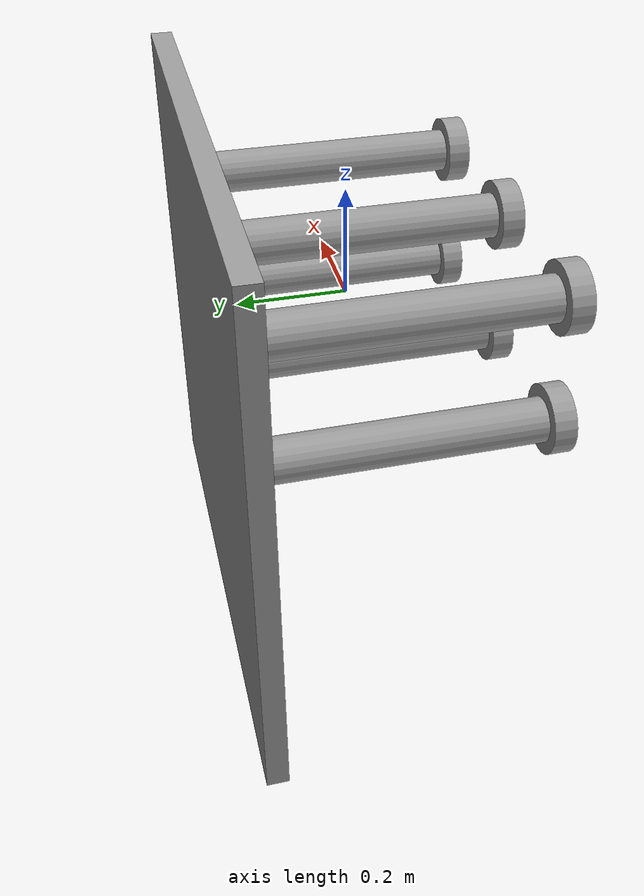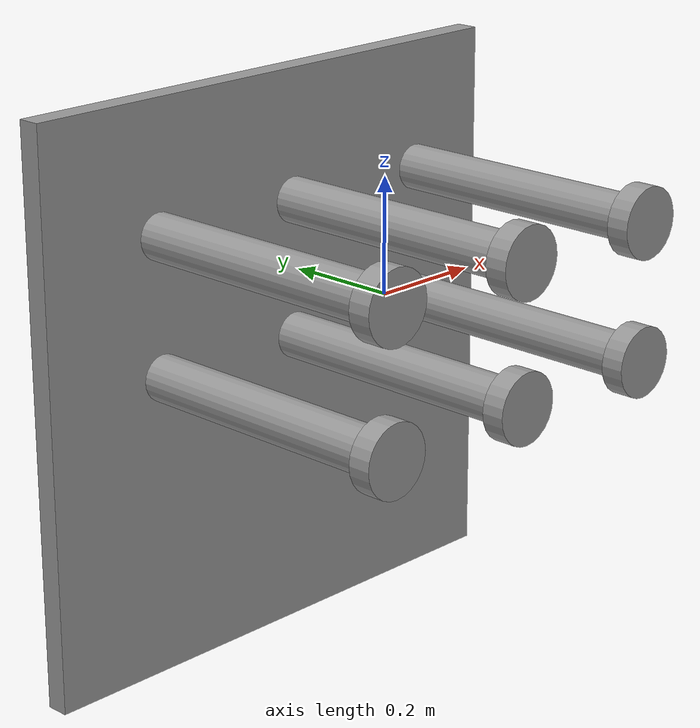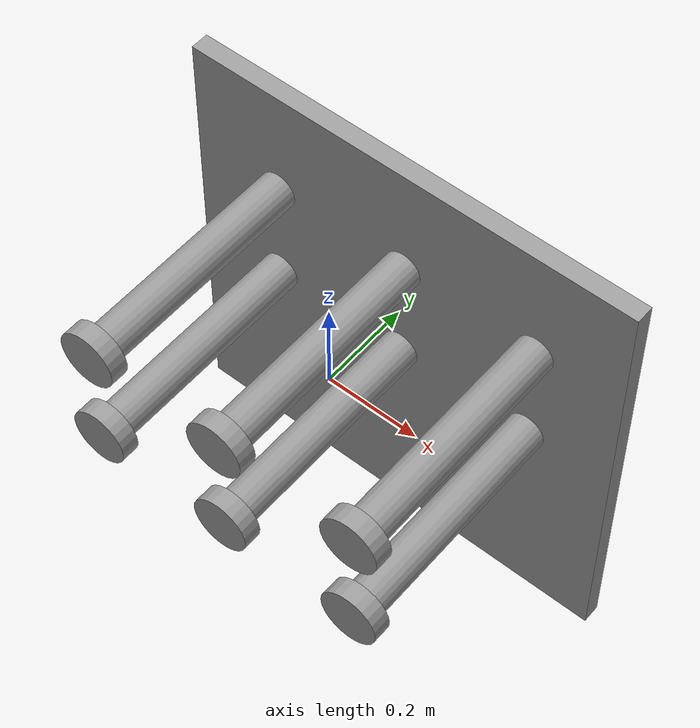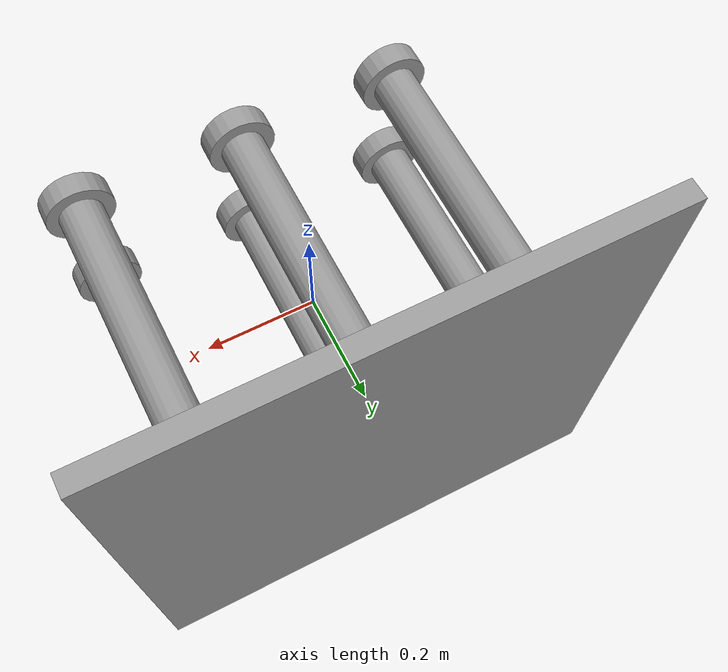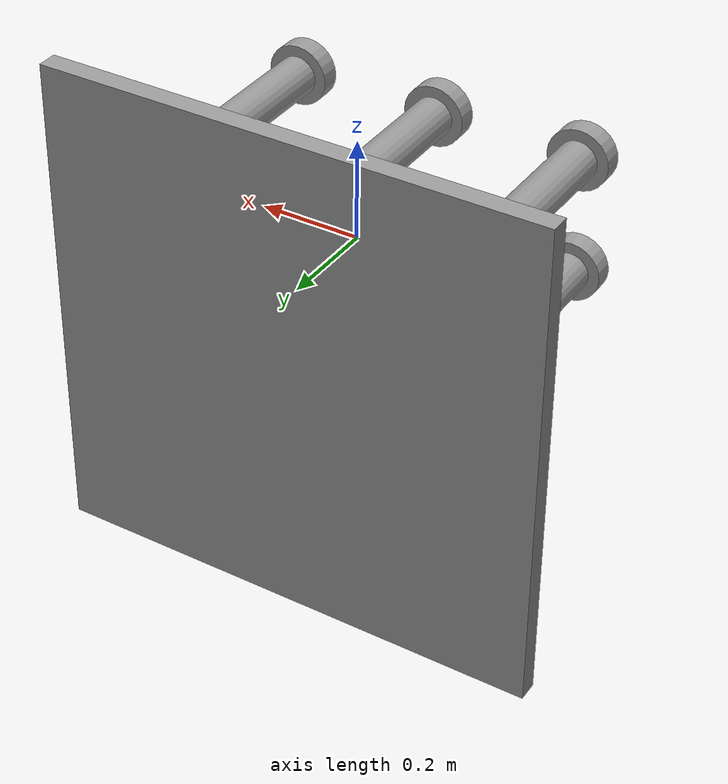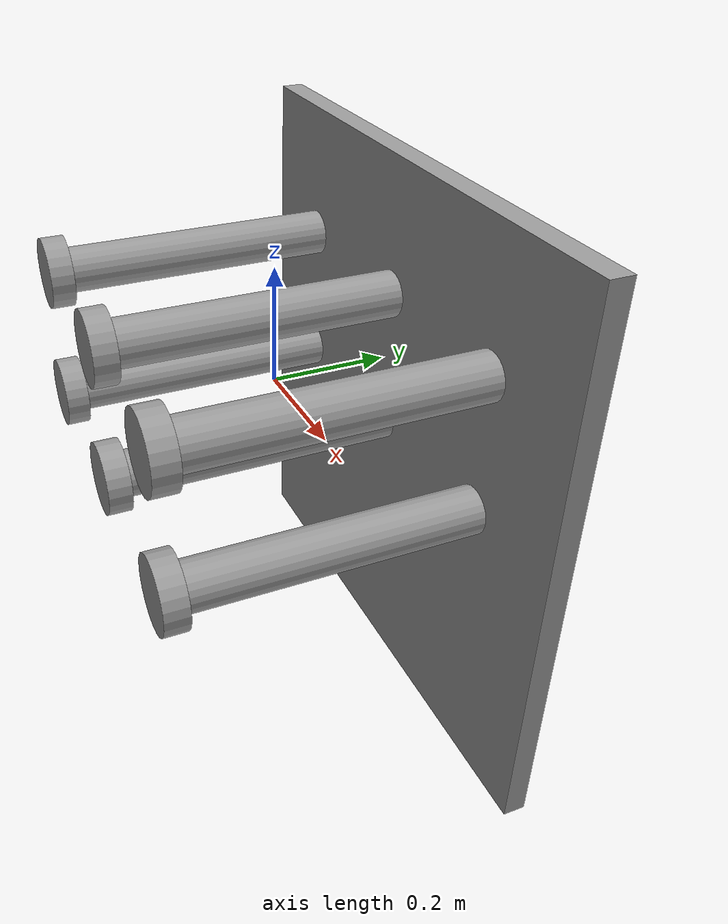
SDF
<?xml version='1.0'?>
<sdf version='1.7'>
  <model name='hooks_rack'>
    <link name='wall'>
      <kinematic>1</kinematic>
      <inertial>
            <mass>0.0443983</mass>
            <inertia>
              <ixx>0.00370715</ixx>
              <ixy>0</ixy>
              <ixz>0</ixz>
              <iyy>0.00739972</iyy>
              <iyz>0</iyz>
              <izz>0.00370715</izz>
            </inertia>
            <pose>0 0 0 0 -0 0</pose>
            </inertial>
      <pose>-0.02 0.25 -0.16 0 -0 0</pose>
      <visual name='visual'>
        <pose>0 0 0 0 -0 0</pose>
        <geometry>
          <box>
            <size>1 0.04 1</size>
          </box>
        </geometry>
        <material>
          <script>
            <uri>file://media/materials/scripts/gazebo.material</uri>
            <name>Gazebo/Grey</name>
          </script>
        </material>
      </visual>
      <collision name='collision'>
        <max_contacts>10</max_contacts>
        <pose>0 0 0 0 -0 0</pose>
        <geometry>
          <box>
            <size>1 0.04 1</size>
          </box>
        </geometry>
      </collision>
    </link>
    <link name='hook1'>
      <kinematic>1</kinematic>
      <inertial>
            <mass>0.0443983</mass>
            <inertia>
              <ixx>0.00370715</ixx>
              <ixy>0</ixy>
              <ixz>0</ixz>
              <iyy>0.00739972</iyy>
              <iyz>0</iyz>
              <izz>0.00370715</izz>
            </inertia>
            <pose>0 0 0 0 -0 0</pose>
            </inertial>
      <pose>-0.3 -0.04 0.12 -1.5708 0 0</pose>
      <visual name='visual_pole'>
        <pose>0 0 0 0 -0 0</pose>
        <geometry>
          <cylinder>
            <radius>0.04</radius>
            <length>0.5</length>
          </cylinder>
        </geometry>
        <material>
          <script>
            <uri>file://media/materials/scripts/gazebo.material</uri>
            <name>Gazebo/Grey</name>
          </script>
        </material>
      </visual>
      <visual name='visual_cap'>
        <pose>0.0 0.0 -0.25 0 0 0</pose>
        <geometry>
          <cylinder>
            <radius>0.062000000000000006</radius>
            <length>0.04</length>
          </cylinder>
        </geometry>
        <material>
          <script>
            <uri>file://media/materials/scripts/gazebo.material</uri>
            <name>Gazebo/Grey</name>
          </script>
        </material>
      </visual>
      <collision name='collision_pole'>
        <max_contacts>10</max_contacts>
        <pose>0 0 0 0 -0 0</pose>
        <geometry>
          <cylinder>
            <radius>0.04</radius>
            <length>0.5</length>
          </cylinder>
        </geometry>
      </collision>
      <collision name='collision_cap'>
        <max_contacts>10</max_contacts>
        <pose>0.0 0.0 -0.25 0 0 0</pose>
        <geometry>
          <cylinder>
            <radius>0.062000000000000006</radius>
            <length>0.04</length>
          </cylinder>
        </geometry>
      </collision>
    </link>
    <link name='hook2'>
      <kinematic>1</kinematic>
      <inertial>
            <mass>0.0443983</mass>
            <inertia>
              <ixx>0.00370715</ixx>
              <ixy>0</ixy>
              <ixz>0</ixz>
              <iyy>0.00739972</iyy>
              <iyz>0</iyz>
              <izz>0.00370715</izz>
            </inertia>
            <pose>0 0 0 0 -0 0</pose>
            </inertial>
      <pose>0.0 -0.04 0.12 -1.5708 0 0</pose>
      <visual name='visual_pole'>
        <pose>0 0 0 0 -0 0</pose>
        <geometry>
          <cylinder>
            <radius>0.04</radius>
            <length>0.5</length>
          </cylinder>
        </geometry>
        <material>
          <script>
            <uri>file://media/materials/scripts/gazebo.material</uri>
            <name>Gazebo/Grey</name>
          </script>
        </material>
      </visual>
      <visual name='visual_cap'>
        <pose>0.0 0.0 -0.25 0 0 0</pose>
        <geometry>
          <cylinder>
            <radius>0.062000000000000006</radius>
            <length>0.04</length>
          </cylinder>
        </geometry>
        <material>
          <script>
            <uri>file://media/materials/scripts/gazebo.material</uri>
            <name>Gazebo/Grey</name>
          </script>
        </material>
      </visual>
      <collision name='collision_pole'>
        <max_contacts>10</max_contacts>
        <pose>0 0 0 0 -0 0</pose>
        <geometry>
          <cylinder>
            <radius>0.04</radius>
            <length>0.5</length>
          </cylinder>
        </geometry>
      </collision>
      <collision name='collision_cap'>
        <max_contacts>10</max_contacts>
        <pose>0.0 0.0 -0.25 0 0 0</pose>
        <geometry>
          <cylinder>
            <radius>0.062000000000000006</radius>
            <length>0.04</length>
          </cylinder>
        </geometry>
      </collision>
    </link>
    <link name='hook3'>
      <kinematic>1</kinematic>
      <inertial>
            <mass>0.0443983</mass>
            <inertia>
              <ixx>0.00370715</ixx>
              <ixy>0</ixy>
              <ixz>0</ixz>
              <iyy>0.00739972</iyy>
              <iyz>0</iyz>
              <izz>0.00370715</izz>
            </inertia>
            <pose>0 0 0 0 -0 0</pose>
            </inertial>
      <pose>0.3 -0.04 0.12 -1.5708 0 0</pose>
      <visual name='visual_pole'>
        <pose>0 0 0 0 -0 0</pose>
        <geometry>
          <cylinder>
            <radius>0.04</radius>
            <length>0.5</length>
          </cylinder>
        </geometry>
        <material>
          <script>
            <uri>file://media/materials/scripts/gazebo.material</uri>
            <name>Gazebo/Grey</name>
          </script>
        </material>
      </visual>
      <visual name='visual_cap'>
        <pose>0.0 0.0 -0.25 0 0 0</pose>
        <geometry>
          <cylinder>
            <radius>0.062000000000000006</radius>
            <length>0.04</length>
          </cylinder>
        </geometry>
        <material>
          <script>
            <uri>file://media/materials/scripts/gazebo.material</uri>
            <name>Gazebo/Grey</name>
          </script>
        </material>
      </visual>
      <collision name='collision_pole'>
        <max_contacts>10</max_contacts>
        <pose>0 0 0 0 -0 0</pose>
        <geometry>
          <cylinder>
            <radius>0.04</radius>
            <length>0.5</length>
          </cylinder>
        </geometry>
      </collision>
      <collision name='collision_cap'>
        <max_contacts>10</max_contacts>
        <pose>0.0 0.0 -0.25 0 0 0</pose>
        <geometry>
          <cylinder>
            <radius>0.062000000000000006</radius>
            <length>0.04</length>
          </cylinder>
        </geometry>
      </collision>
    </link>
    <link name='hook4'>
      <kinematic>1</kinematic>
      <inertial>
            <mass>0.0443983</mass>
            <inertia>
              <ixx>0.00370715</ixx>
              <ixy>0</ixy>
              <ixz>0</ixz>
              <iyy>0.00739972</iyy>
              <iyz>0</iyz>
              <izz>0.00370715</izz>
            </inertia>
            <pose>0 0 0 0 -0 0</pose>
            </inertial>
      <pose>-0.3 -0.04 -0.12 -1.5708 0 0</pose>
      <visual name='visual_pole'>
        <pose>0 0 0 0 -0 0</pose>
        <geometry>
          <cylinder>
            <radius>0.04</radius>
            <length>0.5</length>
          </cylinder>
        </geometry>
        <material>
          <script>
            <uri>file://media/materials/scripts/gazebo.material</uri>
            <name>Gazebo/Grey</name>
          </script>
        </material>
      </visual>
      <visual name='visual_cap'>
        <pose>0.0 0.0 -0.25 0 0 0</pose>
        <geometry>
          <cylinder>
            <radius>0.062000000000000006</radius>
            <length>0.04</length>
          </cylinder>
        </geometry>
        <material>
          <script>
            <uri>file://media/materials/scripts/gazebo.material</uri>
            <name>Gazebo/Grey</name>
          </script>
        </material>
      </visual>
      <collision name='collision_pole'>
        <max_contacts>10</max_contacts>
        <pose>0 0 0 0 -0 0</pose>
        <geometry>
          <cylinder>
            <radius>0.04</radius>
            <length>0.5</length>
          </cylinder>
        </geometry>
      </collision>
      <collision name='collision_cap'>
        <max_contacts>10</max_contacts>
        <pose>0.0 0.0 -0.25 0 0 0</pose>
        <geometry>
          <cylinder>
            <radius>0.062000000000000006</radius>
            <length>0.04</length>
          </cylinder>
        </geometry>
      </collision>
    </link>
    <link name='hook5'>
      <kinematic>1</kinematic>
      <inertial>
            <mass>0.0443983</mass>
            <inertia>
              <ixx>0.00370715</ixx>
              <ixy>0</ixy>
              <ixz>0</ixz>
              <iyy>0.00739972</iyy>
              <iyz>0</iyz>
              <izz>0.00370715</izz>
            </inertia>
            <pose>0 0 0 0 -0 0</pose>
            </inertial>
      <pose>0.0 -0.04 -0.12 -1.5708 0 0</pose>
      <visual name='visual_pole'>
        <pose>0 0 0 0 -0 0</pose>
        <geometry>
          <cylinder>
            <radius>0.04</radius>
            <length>0.5</length>
          </cylinder>
        </geometry>
        <material>
          <script>
            <uri>file://media/materials/scripts/gazebo.material</uri>
            <name>Gazebo/Grey</name>
          </script>
        </material>
      </visual>
      <visual name='visual_cap'>
        <pose>0.0 0.0 -0.25 0 0 0</pose>
        <geometry>
          <cylinder>
            <radius>0.062000000000000006</radius>
            <length>0.04</length>
          </cylinder>
        </geometry>
        <material>
          <script>
            <uri>file://media/materials/scripts/gazebo.material</uri>
            <name>Gazebo/Grey</name>
          </script>
        </material>
      </visual>
      <collision name='collision_pole'>
        <max_contacts>10</max_contacts>
        <pose>0 0 0 0 -0 0</pose>
        <geometry>
          <cylinder>
            <radius>0.04</radius>
            <length>0.5</length>
          </cylinder>
        </geometry>
      </collision>
      <collision name='collision_cap'>
        <max_contacts>10</max_contacts>
        <pose>0.0 0.0 -0.25 0 0 0</pose>
        <geometry>
          <cylinder>
            <radius>0.062000000000000006</radius>
            <length>0.04</length>
          </cylinder>
        </geometry>
      </collision>
    </link>
    <link name='hook6'>
      <kinematic>1</kinematic>
      <inertial>
            <mass>0.0443983</mass>
            <inertia>
              <ixx>0.00370715</ixx>
              <ixy>0</ixy>
              <ixz>0</ixz>
              <iyy>0.00739972</iyy>
              <iyz>0</iyz>
              <izz>0.00370715</izz>
            </inertia>
            <pose>0 0 0 0 -0 0</pose>
            </inertial>
      <pose>0.3 -0.04 -0.12 -1.5708 0 0</pose>
      <visual name='visual_pole'>
        <pose>0 0 0 0 -0 0</pose>
        <geometry>
          <cylinder>
            <radius>0.04</radius>
            <length>0.5</length>
          </cylinder>
        </geometry>
        <material>
          <script>
            <uri>file://media/materials/scripts/gazebo.material</uri>
            <name>Gazebo/Grey</name>
          </script>
        </material>
      </visual>
      <visual name='visual_cap'>
        <pose>0.0 0.0 -0.25 0 0 0</pose>
        <geometry>
          <cylinder>
            <radius>0.062000000000000006</radius>
            <length>0.04</length>
          </cylinder>
        </geometry>
        <material>
          <script>
            <uri>file://media/materials/scripts/gazebo.material</uri>
            <name>Gazebo/Grey</name>
          </script>
        </material>
      </visual>
      <collision name='collision_pole'>
        <max_contacts>10</max_contacts>
        <pose>0 0 0 0 -0 0</pose>
        <geometry>
          <cylinder>
            <radius>0.04</radius>
            <length>0.5</length>
          </cylinder>
        </geometry>
      </collision>
      <collision name='collision_cap'>
        <max_contacts>10</max_contacts>
        <pose>0.0 0.0 -0.25 0 0 0</pose>
        <geometry>
          <cylinder>
            <radius>0.062000000000000006</radius>
            <length>0.04</length>
          </cylinder>
        </geometry>
      </collision>
    </link>
    <allow_auto_disable>1</allow_auto_disable>
  </model>
</sdf>
